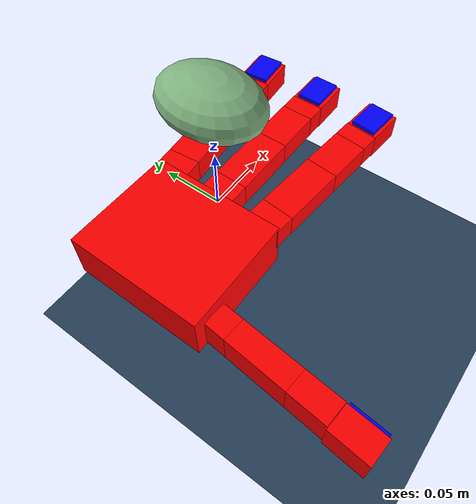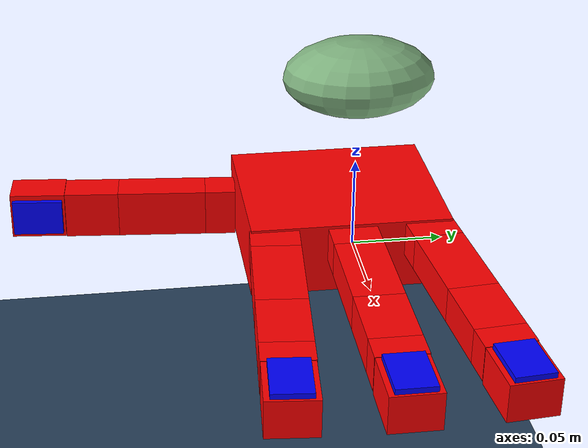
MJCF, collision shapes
<mujoco model="right_allegro_hand scene">
  <include file="right_hand_tacthru.xml"/>

  <statistic center="0 0 0" extent="0.3"/>

  <visual>
    <rgba haze="0.15 0.25 0.35 1"/>
    <quality shadowsize="8192"/>
    <global azimuth="130" elevation="-40"/>
  </visual>

  <asset>
    <texture type="skybox" builtin="gradient" rgb1="0.3 0.5 0.7" rgb2="0 0 0" width="512" height="3072"/>
    <texture type="2d" name="groundplane" builtin="checker" mark="edge" rgb1="0.2 0.3 0.4" rgb2="0.1 0.2 0.3"
      markrgb="0.8 0.8 0.8" width="300" height="300"/>
    <material name="groundplane" texture="groundplane" texuniform="true" texrepeat="5 5" reflectance="0.2"/>
  </asset>

  <worldbody>
    <light pos="0 0 1"/>
    <light pos="0.3 0 1.5" dir="0 0 -1" directional="true"/>
    <geom name="floor" pos="0 0 -0.1" size="0 0 0.05" type="plane" material="groundplane"/>
    <body name="object" pos="0 0 0.1">
      <freejoint/>
      <geom type="ellipsoid" size="0.03 0.04 0.02" rgba="0.5 0.7 0.5 1" condim="6" priority="1"
        friction="0.7 0.002 0.002"/>
    </body>
  </worldbody>
</mujoco>

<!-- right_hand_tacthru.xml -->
<mujoco model="allegro_right">
  <compiler angle="radian" meshdir="assets" autolimits="true"/>

  <option cone="elliptic" impratio="10"/>

  <default>
    <default class="allegro_right">
      <joint axis="0 1 0" damping=".1"/>
      <position kp="1"/>
      <geom density="800"/>

      <default class="visual">
        <geom type="mesh" contype="0" conaffinity="0" group="2" material="black"/>
        <default class="palm_visual">
          <geom mesh="base_link"/>
        </default>
        <default class="base_visual">
          <geom mesh="link_0.0"/>
        </default>
        <default class="proximal_visual">
          <geom mesh="link_1.0"/>
        </default>
        <default class="medial_visual">
          <geom mesh="link_2.0"/>
        </default>
        <default class="distal_visual">
          <geom mesh="link_3.0"/>
        </default>
        <default class="fingertip_visual">
          <geom pos="0 0 0.0267" material="white" mesh="link_3.0_tip"/>
        </default>
        <default class="thumbtip_visual">
          <geom pos="0 0 0.0423" material="white" mesh="link_15.0_tip"/>
        </default>
      </default>

      <default class="collision">
        <geom group="1" type="box" mass="0" rgba="1 0 0 0.45"/>
        <default class="palm_collision">
          <geom size="0.0204 0.0565 0.0475" pos="-0.0093 0 -0.0475"/>
        </default>
        <default class="base_collision">
          <geom size="0.0098 0.01375 0.0082" pos="0 0 0.0082"/>
          <default class="thumb_base_collision">
            <geom size="0.0179 0.017 0.02275" pos="-0.0179 0.009 0.0145"/>
          </default>
        </default>
        <default class="proximal_collision">
          <geom size="0.0098 0.01375 0.027" pos="0 0 0.027"/>
          <default class="thumb_proximal_collision">
            <geom size="0.0098 0.01375 0.00885" pos="0 0 0.00885"/>
          </default>
        </default>
        <default class="medial_collision">
          <geom size="0.0098 0.01375 0.0192" pos="0 0 0.0192"/>
          <default class="thumb_medial_collision">
            <geom size="0.0098 0.01375 0.0257" pos="0 0 0.0257"/>
          </default>
        </default>
        <default class="distal_collision">
          <geom size="0.0098 0.01375 0.008" pos="0 0 0.008"/>
          <default class="thumb_distal_collision">
            <geom size="0.0098 0.01375 0.0157" pos="0 0 0.0157"/>
          </default>
        </default>
        <default class="fingertip_collision">
          <geom type="capsule" size="0.012 0.01" pos="0 0 0.019"/>
          <default class="thumbtip_collision">
            <geom type="capsule" size="0.012 0.008" pos="0 0 0.035"/>
          </default>
        </default>
      </default>

      <default class="base">
        <joint axis="0 0 1" range="-0.47 0.47"/>
        <position ctrlrange="-0.47 0.47"/>
      </default>
      <default class="proximal">
        <joint range="-0.196 1.61"/>
        <position ctrlrange="-0.196 1.61"/>
      </default>
      <default class="medial">
        <joint range="-0.174 1.709"/>
        <position ctrlrange="-0.174 1.709"/>
      </default>
      <default class="distal">
        <joint range="-0.227 1.618"/>
        <position ctrlrange="-0.227 1.618"/>
      </default>
      <default class="thumb_base">
        <joint axis="-1 0 0" range="0.263 1.396"/>
        <position ctrlrange="0.263 1.396"/>
      </default>
      <default class="thumb_proximal">
        <joint axis="0 0 1" range="-0.105 1.163"/>
        <position ctrlrange="-0.105 1.163"/>
      </default>
      <default class="thumb_medial">
        <joint range="-0.189 1.644"/>
        <position ctrlrange="-0.189 1.644"/>
      </default>
      <default class="thumb_distal">
        <joint range="-0.162 1.719"/>
        <position ctrlrange="-0.162 1.719"/>
      </default>
    </default>
  </default>

  <asset>
    <material name="black" rgba="0.2 0.2 0.2 1"/>
    <material name="white" rgba="0.9 0.9 0.9 1"/>

    <mesh file="base_link.stl"/>
    <mesh file="link_0.0.stl"/>
    <mesh file="link_1.0.stl"/>
    <mesh file="link_2.0.stl"/>
    <mesh file="link_3.0.stl"/>
    <mesh file="link_3.0_tip.stl"/>
    <mesh file="link_12.0_right.stl"/>
    <mesh file="link_13.0.stl"/>
    <mesh file="link_14.0.stl"/>
    <mesh file="link_15.0.stl"/>
    <mesh file="link_15.0_tip.stl"/>
    <mesh name="tacthru_tip_mesh" file="tacthru_tip.stl" scale="0.001 0.001 0.001"/>
    <mesh name="th_tip_tacthru_check_mesh" file="th_tip_tacthru_check.stl"/>
    <mesh name="ffalign" file="ffalign.stl" />
  </asset>

  <worldbody>
    <body name="palm" quat="0 1 0 1" childclass="allegro_right">
      <geom class="palm_visual" mesh="base_link"/>
      <geom class="palm_collision" group="1"/>
      <!-- First finger -->
      <body name="ff_base" pos="0 0.0435 -0.001542" quat="0.999048 -0.0436194 0 0">
        <joint name="ffj0" class="base"/>
        <geom class="base_visual"/>
        <geom class="base_collision" group="1"/>
        <body name="ff_proximal" pos="0 0 0.0164">
          <joint name="ffj1" class="proximal"/>
          <geom class="proximal_visual"/>
          <geom class="proximal_collision" group="1"/>
          <body name="ff_medial" pos="0 0 0.054">
            <joint name="ffj2" class="medial"/>
            <geom class="medial_visual"/>
            <geom class="medial_collision" group="1"/>
            <body name="ff_distal" pos="0 0 0.0384">
              <joint name="ffj3" class="distal"/>
              <geom class="distal_visual"/>
              <geom class="distal_collision" group="1"/>
              <body name="ff_tip">
                <geom type="mesh" mesh="ffalign" rgba="0.15 0.85 0.25 1" contype="0" conaffinity="0" group="2"/>
                <geom name="ff_sensor_col" type="box" pos="-0.0010 0.00005 0.0319" size="0.0105 0.0135 0.0159" group="0" rgba="1 0 0 0.45" mass="0"/>
                <geom name="ff_silicone_col" type="box" pos="0.0110 0.00005 0.0319" size="0.0015 0.0105 0.0145" group="0" rgba="0 0 1 0.35" mass="0"/>
              </body>
            </body>
          </body>
        </body>
      </body>
      <!-- Middle finger -->
      <body name="mf_base" pos="0 0 0.0007">
        <joint name="mfj0" class="base"/>
        <geom class="base_visual"/>
        <geom class="base_collision" group="1"/>
        <body name="mf_proximal" pos="0 0 0.0164">
          <joint name="mfj1" class="proximal"/>
          <geom class="proximal_visual"/>
          <geom class="proximal_collision" group="1"/>
          <body name="mf_medial" pos="0 0 0.054">
            <joint name="mfj2" class="medial"/>
            <geom class="medial_visual"/>
            <geom class="medial_collision" group="1"/>
            <body name="mf_distal" pos="0 0 0.0384">
              <joint name="mfj3" class="distal"/>
              <geom class="distal_visual"/>
              <geom class="distal_collision" group="1"/>
              <body name="mf_tip">
                <geom type="mesh" mesh="ffalign" rgba="0.15 0.85 0.25 1" contype="0" conaffinity="0" group="2"/>
                <geom name="mf_sensor_col" type="box" pos="-0.0010 0.00005 0.0319" size="0.0105 0.0135 0.0159" group="0" rgba="1 0 0 0.45" mass="0"/>
                <geom name="mf_silicone_col" type="box" pos="0.0110 0.00005 0.0319" size="0.0015 0.0105 0.0145" group="0" rgba="0 0 1 0.35" mass="0"/>
              </body>
            </body>
          </body>
        </body>
      </body>
      <!-- Ring finger -->
      <body name="rf_base" pos="0 -0.0435 -0.001542" quat="0.999048 0.0436194 0 0">
        <joint name="rfj0" class="base"/>
        <geom class="base_visual"/>
        <geom class="base_collision" group="1"/>
        <body name="rf_proximal" pos="0 0 0.0164">
          <joint name="rfj1" class="proximal"/>
          <geom class="proximal_visual"/>
          <geom class="proximal_collision" group="1"/>
          <body name="rf_medial" pos="0 0 0.054">
            <joint name="rfj2" class="medial"/>
            <geom class="medial_visual"/>
            <geom class="medial_collision" group="1"/>
            <body name="rf_distal" pos="0 0 0.0384">
              <joint name="rfj3" class="distal"/>
              <geom class="distal_visual"/>
              <geom class="distal_collision" group="1"/>
              <body name="rf_tip">
                <geom type="mesh" mesh="ffalign" rgba="0.15 0.85 0.25 1" contype="0" conaffinity="0" group="2"/>
                <geom name="rf_sensor_col" type="box" pos="-0.0010 0.00005 0.0319" size="0.0105 0.0135 0.0159" group="0" rgba="1 0 0 0.45" mass="0"/>
                <geom name="rf_silicone_col" type="box" pos="0.0110 0.00005 0.0319" size="0.0015 0.0105 0.0145" group="0" rgba="0 0 1 0.35" mass="0"/>
              </body>
            </body>
          </body>
        </body>
      </body>
      <!-- Thumb -->
      <body name="th_base" pos="-0.0182 0.019333 -0.045987" quat="0.477714 -0.521334 -0.521334 -0.477714">
        <joint name="thj0" class="thumb_base"/>
        <geom class="visual" mesh="link_12.0_right"/>
        <geom class="thumb_base_collision" group="1"/>
        <body name="th_proximal" pos="-0.027 0.005 0.0399">
          <joint name="thj1" class="thumb_proximal"/>
          <geom class="visual" mesh="link_13.0"/>
          <geom class="thumb_proximal_collision" group="1"/>
          <body name="th_medial" pos="0 0 0.0177">
            <joint name="thj2" class="thumb_medial"/>
            <geom class="visual" mesh="link_14.0"/>
            <geom class="thumb_medial_collision" group="1"/>
            <body name="th_distal" pos="0 0 0.0514">
              <joint name="thj3" class="thumb_distal"/>
              <geom class="visual" mesh="link_15.0"/>
              <geom class="thumb_distal_collision" group="1"/>
              <body name="th_tip">
                <geom name="th_tip_tacthru_check_visual" type="mesh" mesh="th_tip_tacthru_check_mesh" rgba="0.15 0.85 0.25 1" contype="0" conaffinity="0" group="2"/>
                <geom name="th_sensor_col" type="box" pos="-0.0010 0.00005 0.0475" size="0.0105 0.0135 0.0159" group="0" rgba="1 0 0 0.45" mass="0"/>
                <geom name="th_silicone_col" type="box" pos="0.0110 0.00005 0.0475" size="0.0015 0.0105 0.0145" group="0" rgba="0 0 1 0.35" mass="0"/>
              </body>
            </body>
          </body>
        </body>
      </body>
    </body>
  </worldbody>

  <contact>
    <exclude body1="palm" body2="ff_base"/>
    <exclude body1="palm" body2="mf_base"/>
    <exclude body1="palm" body2="rf_base"/>
    <exclude body1="palm" body2="th_base"/>
    <exclude body1="palm" body2="th_proximal"/>
  </contact>

  <actuator>
    <position name="ffa0" joint="ffj0" class="base"/>
    <position name="ffa1" joint="ffj1" class="proximal"/>
    <position name="ffa2" joint="ffj2" class="medial"/>
    <position name="ffa3" joint="ffj3" class="distal"/>
    <position name="mfa0" joint="mfj0" class="base"/>
    <position name="mfa1" joint="mfj1" class="proximal"/>
    <position name="mfa2" joint="mfj2" class="medial"/>
    <position name="mfa3" joint="mfj3" class="distal"/>
    <position name="rfa0" joint="rfj0" class="base"/>
    <position name="rfa1" joint="rfj1" class="proximal"/>
    <position name="rfa2" joint="rfj2" class="medial"/>
    <position name="rfa3" joint="rfj3" class="distal"/>
    <position name="tha0" joint="thj0" class="thumb_base"/>
    <position name="tha1" joint="thj1" class="thumb_proximal"/>
    <position name="tha2" joint="thj2" class="thumb_medial"/>
    <position name="tha3" joint="thj3" class="thumb_distal"/>
  </actuator>
</mujoco>
